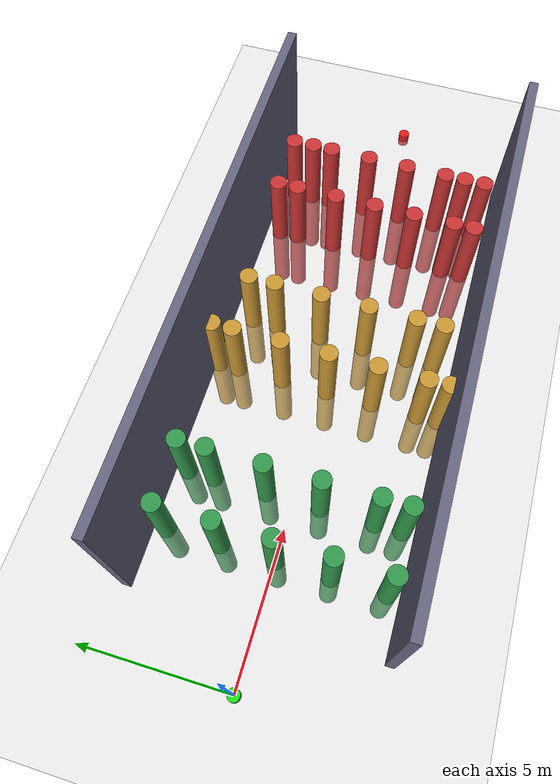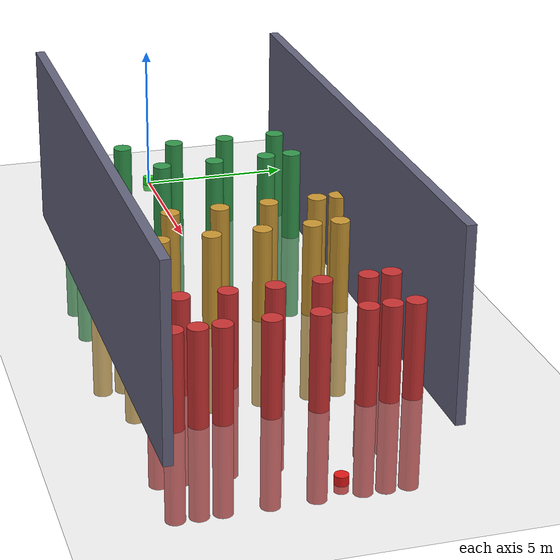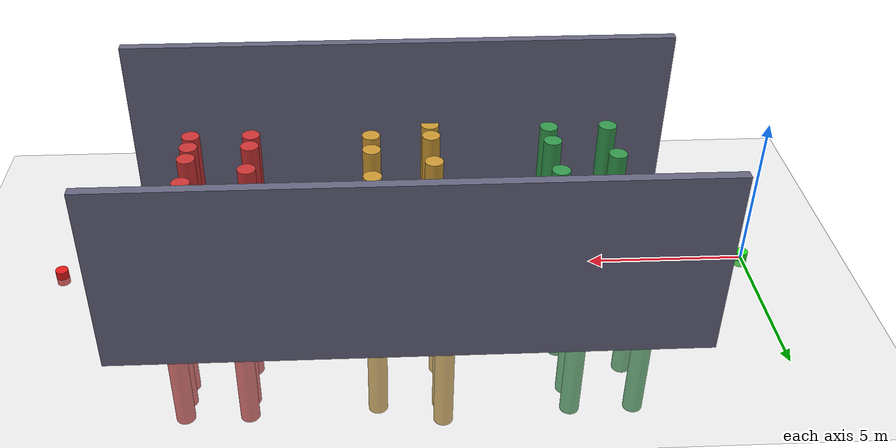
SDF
<?xml version="1.0" ?>
<sdf version="1.6">
  <world name="dense_limit">

    <physics type="ode">
      <max_step_size>0.001</max_step_size>
      <real_time_factor>1.0</real_time_factor>
      <real_time_update_rate>1000</real_time_update_rate>
      <gravity>0 0 -9.81</gravity>
      <ode>
        <solver><type>quick</type><iters>50</iters><sor>1.3</sor></solver>
        <constraints>
          <cfm>0.0</cfm><erp>0.2</erp>
          <contact_max_correcting_vel>100.0</contact_max_correcting_vel>
          <contact_surface_layer>0.001</contact_surface_layer>
        </constraints>
      </ode>
    </physics>

    <scene>
      <ambient>0.5 0.5 0.5 1.0</ambient>
      <shadows>false</shadows>
      <grid>false</grid>
    </scene>

    <include><uri>model://sun</uri></include>
    <include><uri>model://ground_plane</uri></include>

    <!-- ====== Side walls (corridor boundaries) ====== -->
    <model name="wall_left">
      <static>true</static>
      <pose>11 -4.15 3.0 0 0 0</pose>
      <link name="link">
        <collision name="c"><geometry><box><size>18 0.3 6.0</size></box></geometry></collision>
        <visual name="v"><geometry><box><size>18 0.3 6.0</size></box></geometry>
          <material><ambient>0.4 0.4 0.5 1</ambient><diffuse>0.4 0.4 0.5 1</diffuse></material></visual>
      </link>
    </model>
    <model name="wall_right">
      <static>true</static>
      <pose>11 4.15 3.0 0 0 0</pose>
      <link name="link">
        <collision name="c"><geometry><box><size>18 0.3 6.0</size></box></geometry></collision>
        <visual name="v"><geometry><box><size>18 0.3 6.0</size></box></geometry>
          <material><ambient>0.4 0.4 0.5 1</ambient><diffuse>0.4 0.4 0.5 1</diffuse></material></visual>
      </link>
    </model>

    <!-- Phase A: Gap = 1.2m  (Easy)                                 -->
    <!-- Row x=4 aligned: y = {-3.6, -1.8, 0, 1.8, 3.6}              -->
    <model name="a1_1"><static>true</static><pose>4 -3.6 0 0 0 0</pose><link name="l"><collision name="c"><geometry><cylinder><radius>0.3</radius><length>6.0</length></cylinder></geometry></collision><visual name="v"><geometry><cylinder><radius>0.3</radius><length>6.0</length></cylinder></geometry><material><ambient>0.2 0.6 0.3 1</ambient><diffuse>0.2 0.6 0.3 1</diffuse></material></visual></link></model>
    <model name="a1_2"><static>true</static><pose>4 -1.8 0 0 0 0</pose><link name="l"><collision name="c"><geometry><cylinder><radius>0.3</radius><length>6.0</length></cylinder></geometry></collision><visual name="v"><geometry><cylinder><radius>0.3</radius><length>6.0</length></cylinder></geometry><material><ambient>0.2 0.6 0.3 1</ambient><diffuse>0.2 0.6 0.3 1</diffuse></material></visual></link></model>
    <model name="a1_3"><static>true</static><pose>4 0 0 0 0 0</pose><link name="l"><collision name="c"><geometry><cylinder><radius>0.3</radius><length>6.0</length></cylinder></geometry></collision><visual name="v"><geometry><cylinder><radius>0.3</radius><length>6.0</length></cylinder></geometry><material><ambient>0.2 0.6 0.3 1</ambient><diffuse>0.2 0.6 0.3 1</diffuse></material></visual></link></model>
    <model name="a1_4"><static>true</static><pose>4 1.8 0 0 0 0</pose><link name="l"><collision name="c"><geometry><cylinder><radius>0.3</radius><length>6.0</length></cylinder></geometry></collision><visual name="v"><geometry><cylinder><radius>0.3</radius><length>6.0</length></cylinder></geometry><material><ambient>0.2 0.6 0.3 1</ambient><diffuse>0.2 0.6 0.3 1</diffuse></material></visual></link></model>
    <model name="a1_5"><static>true</static><pose>4 3.6 0 0 0 0</pose><link name="l"><collision name="c"><geometry><cylinder><radius>0.3</radius><length>6.0</length></cylinder></geometry></collision><visual name="v"><geometry><cylinder><radius>0.3</radius><length>6.0</length></cylinder></geometry><material><ambient>0.2 0.6 0.3 1</ambient><diffuse>0.2 0.6 0.3 1</diffuse></material></visual></link></model>

    <!-- Row x=6 offset: y = {-3.6, -2.7, -0.9, 0.9, 2.7, 3.6}        -->
    <model name="a2_1"><static>true</static><pose>6 -3.6 0 0 0 0</pose><link name="l"><collision name="c"><geometry><cylinder><radius>0.3</radius><length>6.0</length></cylinder></geometry></collision><visual name="v"><geometry><cylinder><radius>0.3</radius><length>6.0</length></cylinder></geometry><material><ambient>0.2 0.6 0.3 1</ambient><diffuse>0.2 0.6 0.3 1</diffuse></material></visual></link></model>
    <model name="a2_2"><static>true</static><pose>6 -2.7 0 0 0 0</pose><link name="l"><collision name="c"><geometry><cylinder><radius>0.3</radius><length>6.0</length></cylinder></geometry></collision><visual name="v"><geometry><cylinder><radius>0.3</radius><length>6.0</length></cylinder></geometry><material><ambient>0.2 0.6 0.3 1</ambient><diffuse>0.2 0.6 0.3 1</diffuse></material></visual></link></model>
    <model name="a2_3"><static>true</static><pose>6 -0.9 0 0 0 0</pose><link name="l"><collision name="c"><geometry><cylinder><radius>0.3</radius><length>6.0</length></cylinder></geometry></collision><visual name="v"><geometry><cylinder><radius>0.3</radius><length>6.0</length></cylinder></geometry><material><ambient>0.2 0.6 0.3 1</ambient><diffuse>0.2 0.6 0.3 1</diffuse></material></visual></link></model>
    <model name="a2_4"><static>true</static><pose>6 0.9 0 0 0 0</pose><link name="l"><collision name="c"><geometry><cylinder><radius>0.3</radius><length>6.0</length></cylinder></geometry></collision><visual name="v"><geometry><cylinder><radius>0.3</radius><length>6.0</length></cylinder></geometry><material><ambient>0.2 0.6 0.3 1</ambient><diffuse>0.2 0.6 0.3 1</diffuse></material></visual></link></model>
    <model name="a2_5"><static>true</static><pose>6 2.7 0 0 0 0</pose><link name="l"><collision name="c"><geometry><cylinder><radius>0.3</radius><length>6.0</length></cylinder></geometry></collision><visual name="v"><geometry><cylinder><radius>0.3</radius><length>6.0</length></cylinder></geometry><material><ambient>0.2 0.6 0.3 1</ambient><diffuse>0.2 0.6 0.3 1</diffuse></material></visual></link></model>
    <model name="a2_6"><static>true</static><pose>6 3.6 0 0 0 0</pose><link name="l"><collision name="c"><geometry><cylinder><radius>0.3</radius><length>6.0</length></cylinder></geometry></collision><visual name="v"><geometry><cylinder><radius>0.3</radius><length>6.0</length></cylinder></geometry><material><ambient>0.2 0.6 0.3 1</ambient><diffuse>0.2 0.6 0.3 1</diffuse></material></visual></link></model>

    <!-- Phase B: Gap = 1.0m  (Moderate)                             -->
    <!-- Row x=10 aligned: y = {-3.9, -3.2, -1.6, 0, 1.6, 3.2, 3.9}  -->
    <model name="b1_1"><static>true</static><pose>10 -3.9 0 0 0 0</pose><link name="l"><collision name="c"><geometry><cylinder><radius>0.3</radius><length>6.0</length></cylinder></geometry></collision><visual name="v"><geometry><cylinder><radius>0.3</radius><length>6.0</length></cylinder></geometry><material><ambient>0.8 0.6 0.2 1</ambient><diffuse>0.8 0.6 0.2 1</diffuse></material></visual></link></model>
    <model name="b1_2"><static>true</static><pose>10 -3.2 0 0 0 0</pose><link name="l"><collision name="c"><geometry><cylinder><radius>0.3</radius><length>6.0</length></cylinder></geometry></collision><visual name="v"><geometry><cylinder><radius>0.3</radius><length>6.0</length></cylinder></geometry><material><ambient>0.8 0.6 0.2 1</ambient><diffuse>0.8 0.6 0.2 1</diffuse></material></visual></link></model>
    <model name="b1_3"><static>true</static><pose>10 -1.6 0 0 0 0</pose><link name="l"><collision name="c"><geometry><cylinder><radius>0.3</radius><length>6.0</length></cylinder></geometry></collision><visual name="v"><geometry><cylinder><radius>0.3</radius><length>6.0</length></cylinder></geometry><material><ambient>0.8 0.6 0.2 1</ambient><diffuse>0.8 0.6 0.2 1</diffuse></material></visual></link></model>
    <model name="b1_4"><static>true</static><pose>10 0 0 0 0 0</pose><link name="l"><collision name="c"><geometry><cylinder><radius>0.3</radius><length>6.0</length></cylinder></geometry></collision><visual name="v"><geometry><cylinder><radius>0.3</radius><length>6.0</length></cylinder></geometry><material><ambient>0.8 0.6 0.2 1</ambient><diffuse>0.8 0.6 0.2 1</diffuse></material></visual></link></model>
    <model name="b1_5"><static>true</static><pose>10 1.6 0 0 0 0</pose><link name="l"><collision name="c"><geometry><cylinder><radius>0.3</radius><length>6.0</length></cylinder></geometry></collision><visual name="v"><geometry><cylinder><radius>0.3</radius><length>6.0</length></cylinder></geometry><material><ambient>0.8 0.6 0.2 1</ambient><diffuse>0.8 0.6 0.2 1</diffuse></material></visual></link></model>
    <model name="b1_6"><static>true</static><pose>10 3.2 0 0 0 0</pose><link name="l"><collision name="c"><geometry><cylinder><radius>0.3</radius><length>6.0</length></cylinder></geometry></collision><visual name="v"><geometry><cylinder><radius>0.3</radius><length>6.0</length></cylinder></geometry><material><ambient>0.8 0.6 0.2 1</ambient><diffuse>0.8 0.6 0.2 1</diffuse></material></visual></link></model>
    <model name="b1_7"><static>true</static><pose>10 3.9 0 0 0 0</pose><link name="l"><collision name="c"><geometry><cylinder><radius>0.3</radius><length>6.0</length></cylinder></geometry></collision><visual name="v"><geometry><cylinder><radius>0.3</radius><length>6.0</length></cylinder></geometry><material><ambient>0.8 0.6 0.2 1</ambient><diffuse>0.8 0.6 0.2 1</diffuse></material></visual></link></model>

    <!-- Row x=12 offset: y = {-3.3, -2.4, -0.8, 0.8, 2.4, 3.3}       -->
    <model name="b2_1"><static>true</static><pose>12 -3.3 0 0 0 0</pose><link name="l"><collision name="c"><geometry><cylinder><radius>0.3</radius><length>6.0</length></cylinder></geometry></collision><visual name="v"><geometry><cylinder><radius>0.3</radius><length>6.0</length></cylinder></geometry><material><ambient>0.8 0.6 0.2 1</ambient><diffuse>0.8 0.6 0.2 1</diffuse></material></visual></link></model>
    <model name="b2_2"><static>true</static><pose>12 -2.4 0 0 0 0</pose><link name="l"><collision name="c"><geometry><cylinder><radius>0.3</radius><length>6.0</length></cylinder></geometry></collision><visual name="v"><geometry><cylinder><radius>0.3</radius><length>6.0</length></cylinder></geometry><material><ambient>0.8 0.6 0.2 1</ambient><diffuse>0.8 0.6 0.2 1</diffuse></material></visual></link></model>
    <model name="b2_3"><static>true</static><pose>12 -0.8 0 0 0 0</pose><link name="l"><collision name="c"><geometry><cylinder><radius>0.3</radius><length>6.0</length></cylinder></geometry></collision><visual name="v"><geometry><cylinder><radius>0.3</radius><length>6.0</length></cylinder></geometry><material><ambient>0.8 0.6 0.2 1</ambient><diffuse>0.8 0.6 0.2 1</diffuse></material></visual></link></model>
    <model name="b2_4"><static>true</static><pose>12 0.8 0 0 0 0</pose><link name="l"><collision name="c"><geometry><cylinder><radius>0.3</radius><length>6.0</length></cylinder></geometry></collision><visual name="v"><geometry><cylinder><radius>0.3</radius><length>6.0</length></cylinder></geometry><material><ambient>0.8 0.6 0.2 1</ambient><diffuse>0.8 0.6 0.2 1</diffuse></material></visual></link></model>
    <model name="b2_5"><static>true</static><pose>12 2.4 0 0 0 0</pose><link name="l"><collision name="c"><geometry><cylinder><radius>0.3</radius><length>6.0</length></cylinder></geometry></collision><visual name="v"><geometry><cylinder><radius>0.3</radius><length>6.0</length></cylinder></geometry><material><ambient>0.8 0.6 0.2 1</ambient><diffuse>0.8 0.6 0.2 1</diffuse></material></visual></link></model>
    <model name="b2_6"><static>true</static><pose>12 3.3 0 0 0 0</pose><link name="l"><collision name="c"><geometry><cylinder><radius>0.3</radius><length>6.0</length></cylinder></geometry></collision><visual name="v"><geometry><cylinder><radius>0.3</radius><length>6.0</length></cylinder></geometry><material><ambient>0.8 0.6 0.2 1</ambient><diffuse>0.8 0.6 0.2 1</diffuse></material></visual></link></model>

    <!-- Phase C: Gap = 0.8m  (Borderline - theoretical limit)       -->
    <!-- Row x=16 aligned: y = {-3.5, -2.8, -1.4, 0, 1.4, 2.8, 3.5}  -->
    <model name="c1_1"><static>true</static><pose>16 -3.5 0 0 0 0</pose><link name="l"><collision name="c"><geometry><cylinder><radius>0.3</radius><length>6.0</length></cylinder></geometry></collision><visual name="v"><geometry><cylinder><radius>0.3</radius><length>6.0</length></cylinder></geometry><material><ambient>0.8 0.2 0.2 1</ambient><diffuse>0.8 0.2 0.2 1</diffuse></material></visual></link></model>
    <model name="c1_2"><static>true</static><pose>16 -2.8 0 0 0 0</pose><link name="l"><collision name="c"><geometry><cylinder><radius>0.3</radius><length>6.0</length></cylinder></geometry></collision><visual name="v"><geometry><cylinder><radius>0.3</radius><length>6.0</length></cylinder></geometry><material><ambient>0.8 0.2 0.2 1</ambient><diffuse>0.8 0.2 0.2 1</diffuse></material></visual></link></model>
    <model name="c1_3"><static>true</static><pose>16 -1.4 0 0 0 0</pose><link name="l"><collision name="c"><geometry><cylinder><radius>0.3</radius><length>6.0</length></cylinder></geometry></collision><visual name="v"><geometry><cylinder><radius>0.3</radius><length>6.0</length></cylinder></geometry><material><ambient>0.8 0.2 0.2 1</ambient><diffuse>0.8 0.2 0.2 1</diffuse></material></visual></link></model>
    <model name="c1_4"><static>true</static><pose>16 0 0 0 0 0</pose><link name="l"><collision name="c"><geometry><cylinder><radius>0.3</radius><length>6.0</length></cylinder></geometry></collision><visual name="v"><geometry><cylinder><radius>0.3</radius><length>6.0</length></cylinder></geometry><material><ambient>0.8 0.2 0.2 1</ambient><diffuse>0.8 0.2 0.2 1</diffuse></material></visual></link></model>
    <model name="c1_5"><static>true</static><pose>16 1.4 0 0 0 0</pose><link name="l"><collision name="c"><geometry><cylinder><radius>0.3</radius><length>6.0</length></cylinder></geometry></collision><visual name="v"><geometry><cylinder><radius>0.3</radius><length>6.0</length></cylinder></geometry><material><ambient>0.8 0.2 0.2 1</ambient><diffuse>0.8 0.2 0.2 1</diffuse></material></visual></link></model>
    <model name="c1_6"><static>true</static><pose>16 2.8 0 0 0 0</pose><link name="l"><collision name="c"><geometry><cylinder><radius>0.3</radius><length>6.0</length></cylinder></geometry></collision><visual name="v"><geometry><cylinder><radius>0.3</radius><length>6.0</length></cylinder></geometry><material><ambient>0.8 0.2 0.2 1</ambient><diffuse>0.8 0.2 0.2 1</diffuse></material></visual></link></model>
    <model name="c1_7"><static>true</static><pose>16 3.5 0 0 0 0</pose><link name="l"><collision name="c"><geometry><cylinder><radius>0.3</radius><length>6.0</length></cylinder></geometry></collision><visual name="v"><geometry><cylinder><radius>0.3</radius><length>6.0</length></cylinder></geometry><material><ambient>0.8 0.2 0.2 1</ambient><diffuse>0.8 0.2 0.2 1</diffuse></material></visual></link></model>

    <!-- Row x=18 offset: y = {-3.5, -2.8, -2.1, -0.7, 0.7, 2.1, 2.8, 3.5} -->
    <model name="c2_1"><static>true</static><pose>18 -3.5 0 0 0 0</pose><link name="l"><collision name="c"><geometry><cylinder><radius>0.3</radius><length>6.0</length></cylinder></geometry></collision><visual name="v"><geometry><cylinder><radius>0.3</radius><length>6.0</length></cylinder></geometry><material><ambient>0.8 0.2 0.2 1</ambient><diffuse>0.8 0.2 0.2 1</diffuse></material></visual></link></model>
    <model name="c2_2"><static>true</static><pose>18 -2.8 0 0 0 0</pose><link name="l"><collision name="c"><geometry><cylinder><radius>0.3</radius><length>6.0</length></cylinder></geometry></collision><visual name="v"><geometry><cylinder><radius>0.3</radius><length>6.0</length></cylinder></geometry><material><ambient>0.8 0.2 0.2 1</ambient><diffuse>0.8 0.2 0.2 1</diffuse></material></visual></link></model>
    <model name="c2_3"><static>true</static><pose>18 -2.1 0 0 0 0</pose><link name="l"><collision name="c"><geometry><cylinder><radius>0.3</radius><length>6.0</length></cylinder></geometry></collision><visual name="v"><geometry><cylinder><radius>0.3</radius><length>6.0</length></cylinder></geometry><material><ambient>0.8 0.2 0.2 1</ambient><diffuse>0.8 0.2 0.2 1</diffuse></material></visual></link></model>
    <model name="c2_4"><static>true</static><pose>18 -0.7 0 0 0 0</pose><link name="l"><collision name="c"><geometry><cylinder><radius>0.3</radius><length>6.0</length></cylinder></geometry></collision><visual name="v"><geometry><cylinder><radius>0.3</radius><length>6.0</length></cylinder></geometry><material><ambient>0.8 0.2 0.2 1</ambient><diffuse>0.8 0.2 0.2 1</diffuse></material></visual></link></model>
    <model name="c2_5"><static>true</static><pose>18 0.7 0 0 0 0</pose><link name="l"><collision name="c"><geometry><cylinder><radius>0.3</radius><length>6.0</length></cylinder></geometry></collision><visual name="v"><geometry><cylinder><radius>0.3</radius><length>6.0</length></cylinder></geometry><material><ambient>0.8 0.2 0.2 1</ambient><diffuse>0.8 0.2 0.2 1</diffuse></material></visual></link></model>
    <model name="c2_6"><static>true</static><pose>18 2.1 0 0 0 0</pose><link name="l"><collision name="c"><geometry><cylinder><radius>0.3</radius><length>6.0</length></cylinder></geometry></collision><visual name="v"><geometry><cylinder><radius>0.3</radius><length>6.0</length></cylinder></geometry><material><ambient>0.8 0.2 0.2 1</ambient><diffuse>0.8 0.2 0.2 1</diffuse></material></visual></link></model>
    <model name="c2_7"><static>true</static><pose>18 2.8 0 0 0 0</pose><link name="l"><collision name="c"><geometry><cylinder><radius>0.3</radius><length>6.0</length></cylinder></geometry></collision><visual name="v"><geometry><cylinder><radius>0.3</radius><length>6.0</length></cylinder></geometry><material><ambient>0.8 0.2 0.2 1</ambient><diffuse>0.8 0.2 0.2 1</diffuse></material></visual></link></model>
    <model name="c2_8"><static>true</static><pose>18 3.5 0 0 0 0</pose><link name="l"><collision name="c"><geometry><cylinder><radius>0.3</radius><length>6.0</length></cylinder></geometry></collision><visual name="v"><geometry><cylinder><radius>0.3</radius><length>6.0</length></cylinder></geometry><material><ambient>0.8 0.2 0.2 1</ambient><diffuse>0.8 0.2 0.2 1</diffuse></material></visual></link></model>

    <!-- Start marker (green) -->
    <model name="marker_start"><static>true</static><pose>0 0 0 0 0 0</pose>
      <link name="link">
        <visual name="v"><geometry><cylinder><radius>0.2</radius><length>0.5</length></cylinder></geometry>
          <material><ambient>0.1 0.9 0.1 1</ambient><diffuse>0.1 0.9 0.1 1</diffuse></material></visual>
      </link></model>

    <!-- Goal marker (red) -->
    <model name="marker_goal"><static>true</static><pose>22 0 0 0 0 0</pose>
      <link name="link">
        <visual name="v"><geometry><cylinder><radius>0.2</radius><length>0.5</length></cylinder></geometry>
          <material><ambient>0.9 0.1 0.1 1</ambient><diffuse>0.9 0.1 0.1 1</diffuse></material></visual>
      </link></model>

  </world>
</sdf>
